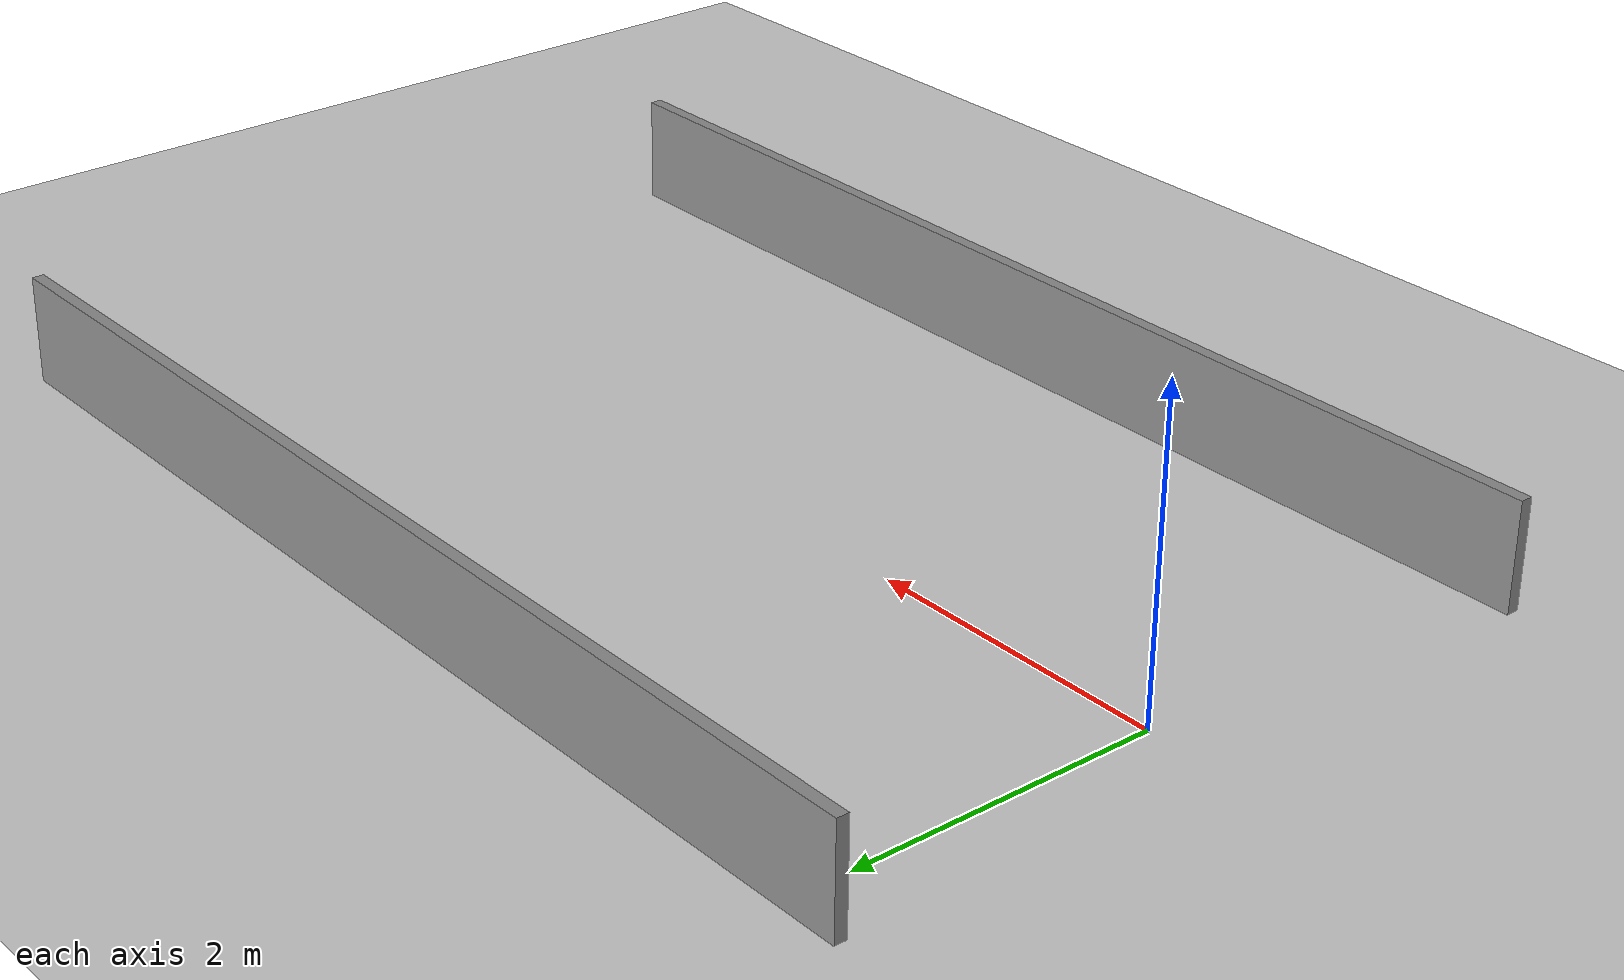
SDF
<?xml version="1.0"?>
<sdf version="1.9">
  <world name="follow_me_wide_corridor">
    <plugin filename="libignition-gazebo-physics-system.so"
            name="ignition::gazebo::systems::Physics"/>
    <plugin filename="libignition-gazebo-user-commands-system.so"
            name="ignition::gazebo::systems::UserCommands"/>
    <plugin filename="libignition-gazebo-scene-broadcaster-system.so"
            name="ignition::gazebo::systems::SceneBroadcaster"/>
    <plugin filename="libignition-gazebo-sensors-system.so"
            name="ignition::gazebo::systems::Sensors">
      <!-- FortressではLiDAR出力をGazebo Transportへ出し、ROS側へはros_gz_bridgeで接続する。 -->
      <render_engine>ogre2</render_engine>
    </plugin>

    <physics name="default_physics" type="ode">
      <max_step_size>0.001</max_step_size>
      <real_time_update_rate>1000</real_time_update_rate>
      <real_time_factor>1.0</real_time_factor>
    </physics>

    <scene>
      <ambient>0.45 0.45 0.45 1</ambient>
      <background>0.7 0.7 0.7 1</background>
      <shadows>true</shadows>
    </scene>

    <light type="directional" name="sun">
      <cast_shadows>true</cast_shadows>
      <pose>0 0 10 0 0 0</pose>
      <diffuse>0.8 0.8 0.8 1</diffuse>
      <specular>0.2 0.2 0.2 1</specular>
      <attenuation>
        <range>1000</range>
        <constant>0.9</constant>
        <linear>0.01</linear>
        <quadratic>0.001</quadratic>
      </attenuation>
      <direction>-0.5 0.1 -0.9</direction>
    </light>

    <model name="ground_plane">
      <static>true</static>
      <link name="link">
        <collision name="collision">
          <geometry>
            <plane>
              <normal>0 0 1</normal>
              <size>100 100</size>
            </plane>
          </geometry>
        </collision>
        <visual name="visual">
          <geometry>
            <plane>
              <normal>0 0 1</normal>
              <size>100 100</size>
            </plane>
          </geometry>
          <material>
            <ambient>0.8 0.8 0.8 1</ambient>
            <diffuse>0.8 0.8 0.8 1</diffuse>
          </material>
        </visual>
      </link>
    </model>

    <model name="wide_corridor_left_wall">
      <static>true</static>
      <!-- 長い旋回+直進軌道でActorやロボットが壁に干渉しないよう、幅と長さに余裕を持たせる。 -->
      <pose>3.4 2.40 0.35 0 0 0</pose>
      <link name="link">
        <collision name="collision">
          <geometry>
            <box>
              <size>7.6 0.08 0.70</size>
            </box>
          </geometry>
        </collision>
        <visual name="visual">
          <!-- 536870913 = GUI表示bit(1) + LiDAR専用bit(0x20000000)。壁はGUIにも/scanにも出す。 -->
          <visibility_flags>536870913</visibility_flags>
          <geometry>
            <box>
              <size>7.6 0.08 0.70</size>
            </box>
          </geometry>
          <material>
            <ambient>0.55 0.55 0.55 1</ambient>
            <diffuse>0.55 0.55 0.55 1</diffuse>
          </material>
        </visual>
      </link>
    </model>

    <model name="wide_corridor_right_wall">
      <static>true</static>
      <pose>3.4 -2.40 0.35 0 0 0</pose>
      <link name="link">
        <collision name="collision">
          <geometry>
            <box>
              <size>7.6 0.08 0.70</size>
            </box>
          </geometry>
        </collision>
        <visual name="visual">
          <visibility_flags>536870913</visibility_flags>
          <geometry>
            <box>
              <size>7.6 0.08 0.70</size>
            </box>
          </geometry>
          <material>
            <ambient>0.55 0.55 0.55 1</ambient>
            <diffuse>0.55 0.55 0.55 1</diffuse>
          </material>
        </visual>
      </link>
    </model>
  </world>
</sdf>
